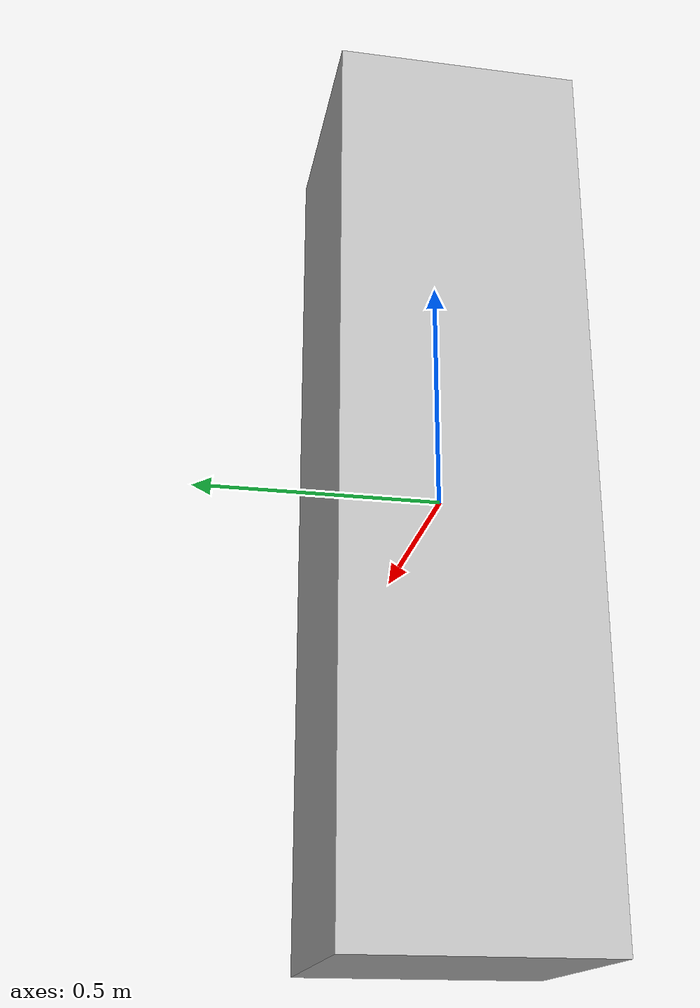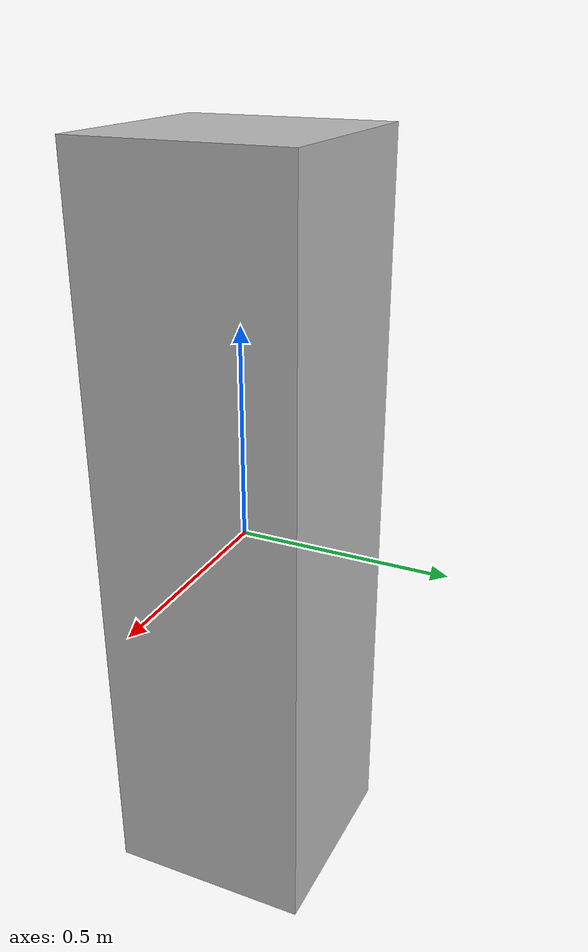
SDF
<?xml version="1.0" ?>
<sdf version="1.6">
  <model name="actor">
    <link name="actor_link">
      <visual name="visual">
        <geometry>
          <box>
            <size>0.5 0.5 1.8</size>
          </box>
        </geometry>
      </visual>
      <collision name="collision">
        <geometry>
          <box>
            <size>0.5 0.5 1.8</size>
          </box>
        </geometry>
      </collision>
    </link>
  </model>
</sdf>
